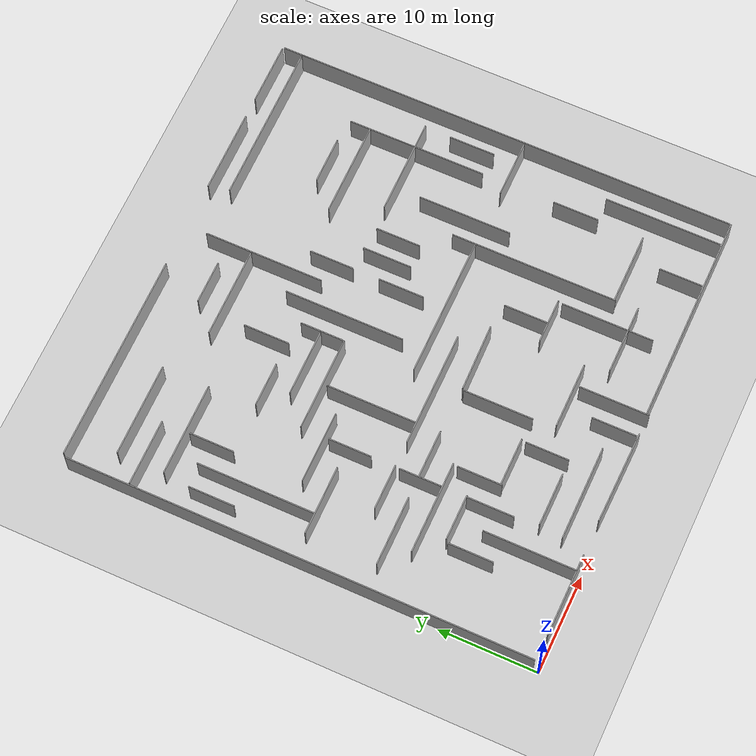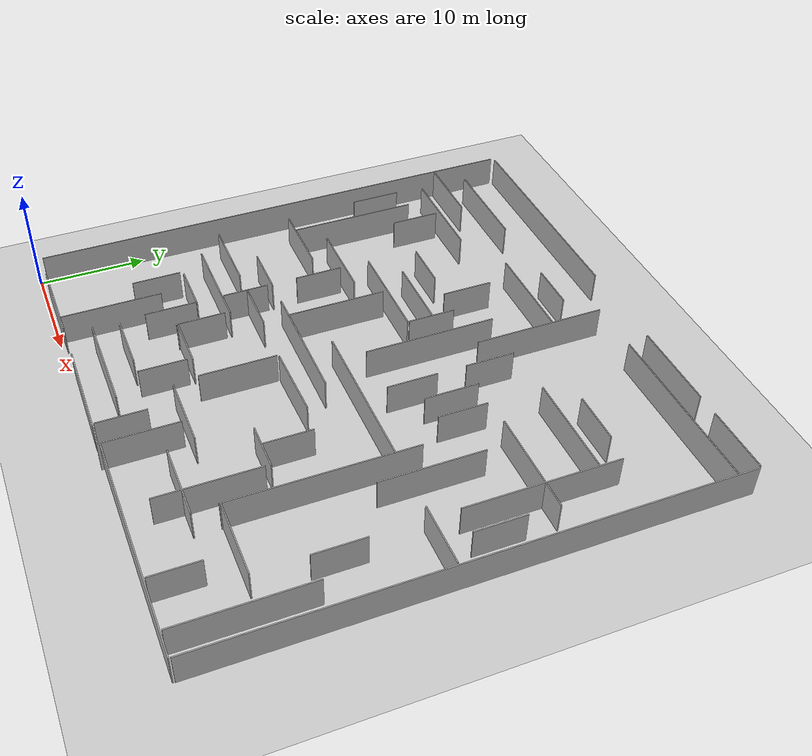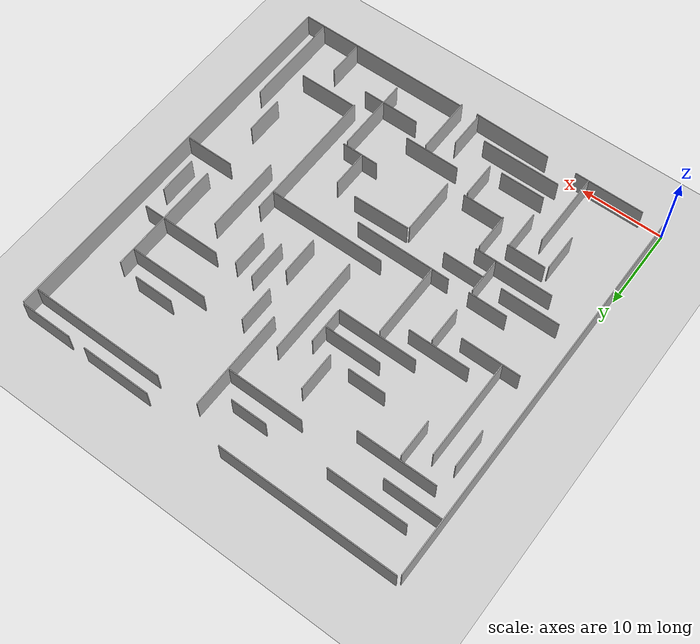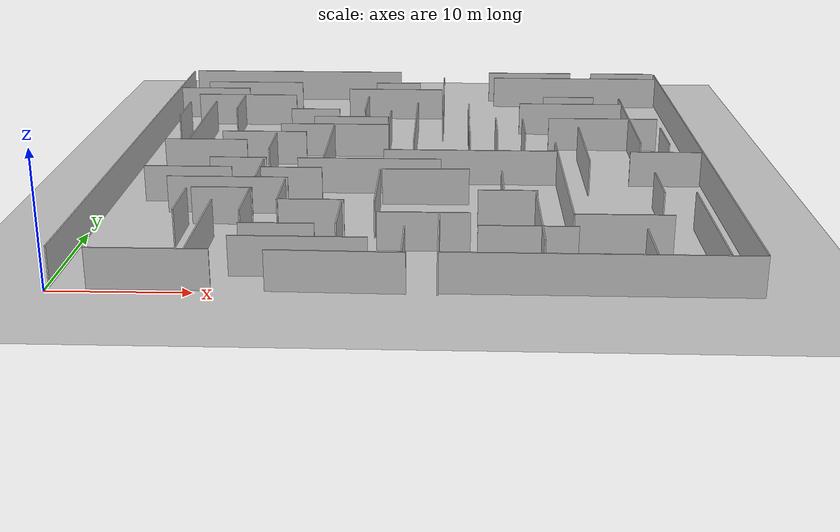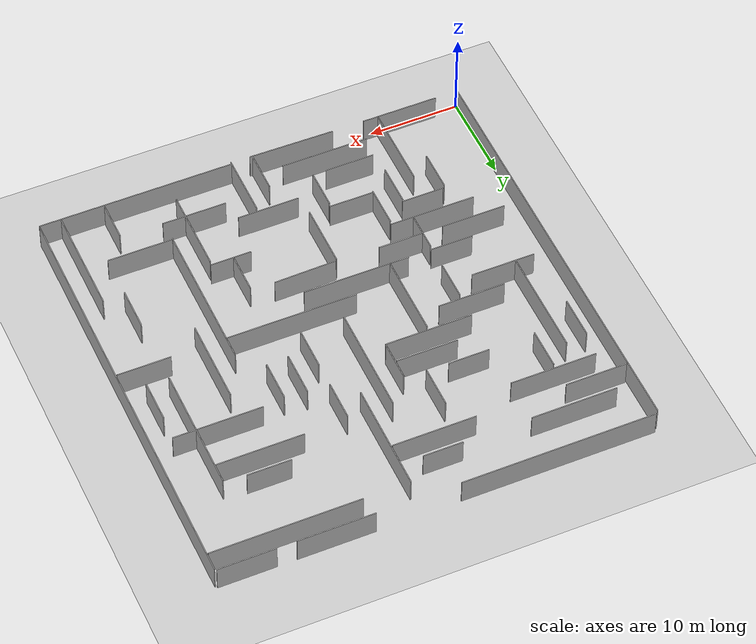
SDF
<?xml version="1.0" ?>
<sdf version="1.6">
  <world name="slam_world">
    <light name="sun" type="directional">
      <pose>0 0 10 0 0 0</pose>
      <diffuse>0.8 0.8 0.8 1</diffuse>
      <direction>-0.5 0.1 -0.9</direction>
    </light>
    <model name="ground_plane">
      <static>true</static>
      <link name="link">
        <collision name="collision">
          <geometry>
            <plane>
              <normal>0 0 1</normal>
              <size>100 100</size>
            </plane>
          </geometry>
        </collision>
        <visual name="visual">
          <geometry>
            <plane>
              <normal>0 0 1</normal>
              <size>100 100</size>
            </plane>
          </geometry>
          <material>
            <ambient>0.8 0.8 0.8 1</ambient>
            <diffuse>0.8 0.8 0.8 1</diffuse>
            <specular>0.8 0.8 0.8 1</specular>
          </material>
        </visual>
      </link>
    </model>
    <model name="wall_0">
      <static>true</static>
      <pose>37.05 0.44999999999999996 1.5 0 0 0.0</pose>
      <link name="link">
        <collision name="collision">
          <geometry>
            <box>
              <size>21.6 0.1 3.0</size>
            </box>
          </geometry>
        </collision>
        <visual name="visual">
          <geometry>
            <box>
              <size>21.6 0.1 3.0</size>
            </box>
          </geometry>
          <material>
            <ambient>0.5 0.5 0.5 1</ambient>
            <diffuse>0.7 0.7 0.7 1</diffuse>
          </material>
        </visual>
      </link>
    </model>
    <model name="wall_1">
      <static>true</static>
      <pose>47.85 24.3 1.5 0 0 1.5707963267948966</pose>
      <link name="link">
        <collision name="collision">
          <geometry>
            <box>
              <size>47.4 0.1 3.0</size>
            </box>
          </geometry>
        </collision>
        <visual name="visual">
          <geometry>
            <box>
              <size>47.4 0.1 3.0</size>
            </box>
          </geometry>
          <material>
            <ambient>0.5 0.5 0.5 1</ambient>
            <diffuse>0.7 0.7 0.7 1</diffuse>
          </material>
        </visual>
      </link>
    </model>
    <model name="wall_2">
      <static>true</static>
      <pose>11.1 48.15 1.5 0 0 0.0</pose>
      <link name="link">
        <collision name="collision">
          <geometry>
            <box>
              <size>21.3 0.1 3.0</size>
            </box>
          </geometry>
        </collision>
        <visual name="visual">
          <geometry>
            <box>
              <size>21.3 0.1 3.0</size>
            </box>
          </geometry>
          <material>
            <ambient>0.5 0.5 0.5 1</ambient>
            <diffuse>0.7 0.7 0.7 1</diffuse>
          </material>
        </visual>
      </link>
    </model>
    <model name="wall_3">
      <static>true</static>
      <pose>0.15 24.225 1.5 0 0 1.5707963267948966</pose>
      <link name="link">
        <collision name="collision">
          <geometry>
            <box>
              <size>47.25 0.1 3.0</size>
            </box>
          </geometry>
        </collision>
        <visual name="visual">
          <geometry>
            <box>
              <size>47.25 0.1 3.0</size>
            </box>
          </geometry>
          <material>
            <ambient>0.5 0.5 0.5 1</ambient>
            <diffuse>0.7 0.7 0.7 1</diffuse>
          </material>
        </visual>
      </link>
    </model>
    <model name="wall_4">
      <static>true</static>
      <pose>39.525 46.05 1.5 0 0 0.0</pose>
      <link name="link">
        <collision name="collision">
          <geometry>
            <box>
              <size>16.349999999999998 0.1 3.0</size>
            </box>
          </geometry>
        </collision>
        <visual name="visual">
          <geometry>
            <box>
              <size>16.349999999999998 0.1 3.0</size>
            </box>
          </geometry>
          <material>
            <ambient>0.5 0.5 0.5 1</ambient>
            <diffuse>0.7 0.7 0.7 1</diffuse>
          </material>
        </visual>
      </link>
    </model>
    <model name="wall_5">
      <static>true</static>
      <pose>28.65 22.05 1.5 0 0 0.0</pose>
      <link name="link">
        <collision name="collision">
          <geometry>
            <box>
              <size>14.400000000000002 0.1 3.0</size>
            </box>
          </geometry>
        </collision>
        <visual name="visual">
          <geometry>
            <box>
              <size>14.400000000000002 0.1 3.0</size>
            </box>
          </geometry>
          <material>
            <ambient>0.5 0.5 0.5 1</ambient>
            <diffuse>0.7 0.7 0.7 1</diffuse>
          </material>
        </visual>
      </link>
    </model>
    <model name="wall_6">
      <static>true</static>
      <pose>9.675 19.65 1.5 0 0 0.0</pose>
      <link name="link">
        <collision name="collision">
          <geometry>
            <box>
              <size>4.65 0.1 3.0</size>
            </box>
          </geometry>
        </collision>
        <visual name="visual">
          <geometry>
            <box>
              <size>4.65 0.1 3.0</size>
            </box>
          </geometry>
          <material>
            <ambient>0.5 0.5 0.5 1</ambient>
            <diffuse>0.7 0.7 0.7 1</diffuse>
          </material>
        </visual>
      </link>
    </model>
    <model name="wall_7">
      <static>true</static>
      <pose>26.25 39.974999999999994 1.5 0 0 1.5707963267948966</pose>
      <link name="link">
        <collision name="collision">
          <geometry>
            <box>
              <size>12.149999999999999 0.1 3.0</size>
            </box>
          </geometry>
        </collision>
        <visual name="visual">
          <geometry>
            <box>
              <size>12.149999999999999 0.1 3.0</size>
            </box>
          </geometry>
          <material>
            <ambient>0.5 0.5 0.5 1</ambient>
            <diffuse>0.7 0.7 0.7 1</diffuse>
          </material>
        </visual>
      </link>
    </model>
    <model name="wall_8">
      <static>true</static>
      <pose>23.849999999999998 2.7 1.5 0 0 1.5707963267948966</pose>
      <link name="link">
        <collision name="collision">
          <geometry>
            <box>
              <size>4.5 0.1 3.0</size>
            </box>
          </geometry>
        </collision>
        <visual name="visual">
          <geometry>
            <box>
              <size>4.5 0.1 3.0</size>
            </box>
          </geometry>
          <material>
            <ambient>0.5 0.5 0.5 1</ambient>
            <diffuse>0.7 0.7 0.7 1</diffuse>
          </material>
        </visual>
      </link>
    </model>
    <model name="wall_9">
      <static>true</static>
      <pose>11.85 10.049999999999999 1.5 0 0 1.5707963267948966</pose>
      <link name="link">
        <collision name="collision">
          <geometry>
            <box>
              <size>4.8 0.1 3.0</size>
            </box>
          </geometry>
        </collision>
        <visual name="visual">
          <geometry>
            <box>
              <size>4.8 0.1 3.0</size>
            </box>
          </geometry>
          <material>
            <ambient>0.5 0.5 0.5 1</ambient>
            <diffuse>0.7 0.7 0.7 1</diffuse>
          </material>
        </visual>
      </link>
    </model>
    <model name="wall_10">
      <static>true</static>
      <pose>7.275 38.85 1.5 0 0 0.0</pose>
      <link name="link">
        <collision name="collision">
          <geometry>
            <box>
              <size>9.45 0.1 3.0</size>
            </box>
          </geometry>
        </collision>
        <visual name="visual">
          <geometry>
            <box>
              <size>9.45 0.1 3.0</size>
            </box>
          </geometry>
          <material>
            <ambient>0.5 0.5 0.5 1</ambient>
            <diffuse>0.7 0.7 0.7 1</diffuse>
          </material>
        </visual>
      </link>
    </model>
    <model name="wall_11">
      <static>true</static>
      <pose>31.049999999999997 29.174999999999997 1.5 0 0 1.5707963267948966</pose>
      <link name="link">
        <collision name="collision">
          <geometry>
            <box>
              <size>4.949999999999999 0.1 3.0</size>
            </box>
          </geometry>
        </collision>
        <visual name="visual">
          <geometry>
            <box>
              <size>4.949999999999999 0.1 3.0</size>
            </box>
          </geometry>
          <material>
            <ambient>0.5 0.5 0.5 1</ambient>
            <diffuse>0.7 0.7 0.7 1</diffuse>
          </material>
        </visual>
      </link>
    </model>
    <model name="wall_12">
      <static>true</static>
      <pose>45.449999999999996 26.625 1.5 0 0 1.5707963267948966</pose>
      <link name="link">
        <collision name="collision">
          <geometry>
            <box>
              <size>4.649999999999999 0.1 3.0</size>
            </box>
          </geometry>
        </collision>
        <visual name="visual">
          <geometry>
            <box>
              <size>4.649999999999999 0.1 3.0</size>
            </box>
          </geometry>
          <material>
            <ambient>0.5 0.5 0.5 1</ambient>
            <diffuse>0.7 0.7 0.7 1</diffuse>
          </material>
        </visual>
      </link>
    </model>
    <model name="wall_13">
      <static>true</static>
      <pose>39.45 7.6499999999999995 1.5 0 0 0.0</pose>
      <link name="link">
        <collision name="collision">
          <geometry>
            <box>
              <size>7.199999999999996 0.1 3.0</size>
            </box>
          </geometry>
        </collision>
        <visual name="visual">
          <geometry>
            <box>
              <size>7.199999999999996 0.1 3.0</size>
            </box>
          </geometry>
          <material>
            <ambient>0.5 0.5 0.5 1</ambient>
            <diffuse>0.7 0.7 0.7 1</diffuse>
          </material>
        </visual>
      </link>
    </model>
    <model name="wall_14">
      <static>true</static>
      <pose>3.675 41.25 1.5 0 0 0.0</pose>
      <link name="link">
        <collision name="collision">
          <geometry>
            <box>
              <size>6.75 0.1 3.0</size>
            </box>
          </geometry>
        </collision>
        <visual name="visual">
          <geometry>
            <box>
              <size>6.75 0.1 3.0</size>
            </box>
          </geometry>
          <material>
            <ambient>0.5 0.5 0.5 1</ambient>
            <diffuse>0.7 0.7 0.7 1</diffuse>
          </material>
        </visual>
      </link>
    </model>
    <model name="wall_15">
      <static>true</static>
      <pose>43.05 14.625 1.5 0 0 1.5707963267948966</pose>
      <link name="link">
        <collision name="collision">
          <geometry>
            <box>
              <size>4.65 0.1 3.0</size>
            </box>
          </geometry>
        </collision>
        <visual name="visual">
          <geometry>
            <box>
              <size>4.65 0.1 3.0</size>
            </box>
          </geometry>
          <material>
            <ambient>0.5 0.5 0.5 1</ambient>
            <diffuse>0.7 0.7 0.7 1</diffuse>
          </material>
        </visual>
      </link>
    </model>
    <model name="wall_16">
      <static>true</static>
      <pose>40.725 31.65 1.5 0 0 0.0</pose>
      <link name="link">
        <collision name="collision">
          <geometry>
            <box>
              <size>9.75 0.1 3.0</size>
            </box>
          </geometry>
        </collision>
        <visual name="visual">
          <geometry>
            <box>
              <size>9.75 0.1 3.0</size>
            </box>
          </geometry>
          <material>
            <ambient>0.5 0.5 0.5 1</ambient>
            <diffuse>0.7 0.7 0.7 1</diffuse>
          </material>
        </visual>
      </link>
    </model>
    <model name="wall_17">
      <static>true</static>
      <pose>4.6499999999999995 30.449999999999996 1.5 0 0 1.5707963267948966</pose>
      <link name="link">
        <collision name="collision">
          <geometry>
            <box>
              <size>11.999999999999996 0.1 3.0</size>
            </box>
          </geometry>
        </collision>
        <visual name="visual">
          <geometry>
            <box>
              <size>11.999999999999996 0.1 3.0</size>
            </box>
          </geometry>
          <material>
            <ambient>0.5 0.5 0.5 1</ambient>
            <diffuse>0.7 0.7 0.7 1</diffuse>
          </material>
        </visual>
      </link>
    </model>
    <model name="wall_18">
      <static>true</static>
      <pose>6.074999999999999 17.25 1.5 0 0 0.0</pose>
      <link name="link">
        <collision name="collision">
          <geometry>
            <box>
              <size>7.05 0.1 3.0</size>
            </box>
          </geometry>
        </collision>
        <visual name="visual">
          <geometry>
            <box>
              <size>7.05 0.1 3.0</size>
            </box>
          </geometry>
          <material>
            <ambient>0.5 0.5 0.5 1</ambient>
            <diffuse>0.7 0.7 0.7 1</diffuse>
          </material>
        </visual>
      </link>
    </model>
    <model name="wall_19">
      <static>true</static>
      <pose>35.85 15.975 1.5 0 0 1.5707963267948966</pose>
      <link name="link">
        <collision name="collision">
          <geometry>
            <box>
              <size>16.95 0.1 3.0</size>
            </box>
          </geometry>
        </collision>
        <visual name="visual">
          <geometry>
            <box>
              <size>16.95 0.1 3.0</size>
            </box>
          </geometry>
          <material>
            <ambient>0.5 0.5 0.5 1</ambient>
            <diffuse>0.7 0.7 0.7 1</diffuse>
          </material>
        </visual>
      </link>
    </model>
    <model name="wall_20">
      <static>true</static>
      <pose>21.674999999999997 43.65 1.5 0 0 0.0</pose>
      <link name="link">
        <collision name="collision">
          <geometry>
            <box>
              <size>4.349999999999998 0.1 3.0</size>
            </box>
          </geometry>
        </collision>
        <visual name="visual">
          <geometry>
            <box>
              <size>4.349999999999998 0.1 3.0</size>
            </box>
          </geometry>
          <material>
            <ambient>0.5 0.5 0.5 1</ambient>
            <diffuse>0.7 0.7 0.7 1</diffuse>
          </material>
        </visual>
      </link>
    </model>
    <model name="wall_21">
      <static>true</static>
      <pose>21.45 13.425 1.5 0 0 1.5707963267948966</pose>
      <link name="link">
        <collision name="collision">
          <geometry>
            <box>
              <size>7.049999999999999 0.1 3.0</size>
            </box>
          </geometry>
        </collision>
        <visual name="visual">
          <geometry>
            <box>
              <size>7.049999999999999 0.1 3.0</size>
            </box>
          </geometry>
          <material>
            <ambient>0.5 0.5 0.5 1</ambient>
            <diffuse>0.7 0.7 0.7 1</diffuse>
          </material>
        </visual>
      </link>
    </model>
    <model name="wall_22">
      <static>true</static>
      <pose>16.65 29.25 1.5 0 0 0.0</pose>
      <link name="link">
        <collision name="collision">
          <geometry>
            <box>
              <size>9.6 0.1 3.0</size>
            </box>
          </geometry>
        </collision>
        <visual name="visual">
          <geometry>
            <box>
              <size>9.6 0.1 3.0</size>
            </box>
          </geometry>
          <material>
            <ambient>0.5 0.5 0.5 1</ambient>
            <diffuse>0.7 0.7 0.7 1</diffuse>
          </material>
        </visual>
      </link>
    </model>
    <model name="wall_23">
      <static>true</static>
      <pose>38.25 36.449999999999996 1.5 0 0 0.0</pose>
      <link name="link">
        <collision name="collision">
          <geometry>
            <box>
              <size>9.600000000000001 0.1 3.0</size>
            </box>
          </geometry>
        </collision>
        <visual name="visual">
          <geometry>
            <box>
              <size>9.600000000000001 0.1 3.0</size>
            </box>
          </geometry>
          <material>
            <ambient>0.5 0.5 0.5 1</ambient>
            <diffuse>0.7 0.7 0.7 1</diffuse>
          </material>
        </visual>
      </link>
    </model>
    <model name="wall_24">
      <static>true</static>
      <pose>19.05 36.224999999999994 1.5 0 0 1.5707963267948966</pose>
      <link name="link">
        <collision name="collision">
          <geometry>
            <box>
              <size>4.649999999999999 0.1 3.0</size>
            </box>
          </geometry>
        </collision>
        <visual name="visual">
          <geometry>
            <box>
              <size>4.649999999999999 0.1 3.0</size>
            </box>
          </geometry>
          <material>
            <ambient>0.5 0.5 0.5 1</ambient>
            <diffuse>0.7 0.7 0.7 1</diffuse>
          </material>
        </visual>
      </link>
    </model>
    <model name="wall_25">
      <static>true</static>
      <pose>28.65 33.9 1.5 0 0 1.5707963267948966</pose>
      <link name="link">
        <collision name="collision">
          <geometry>
            <box>
              <size>4.5 0.1 3.0</size>
            </box>
          </geometry>
        </collision>
        <visual name="visual">
          <geometry>
            <box>
              <size>4.5 0.1 3.0</size>
            </box>
          </geometry>
          <material>
            <ambient>0.5 0.5 0.5 1</ambient>
            <diffuse>0.7 0.7 0.7 1</diffuse>
          </material>
        </visual>
      </link>
    </model>
    <model name="wall_26">
      <static>true</static>
      <pose>38.25 24.225 1.5 0 0 1.5707963267948966</pose>
      <link name="link">
        <collision name="collision">
          <geometry>
            <box>
              <size>9.45 0.1 3.0</size>
            </box>
          </geometry>
        </collision>
        <visual name="visual">
          <geometry>
            <box>
              <size>9.45 0.1 3.0</size>
            </box>
          </geometry>
          <material>
            <ambient>0.5 0.5 0.5 1</ambient>
            <diffuse>0.7 0.7 0.7 1</diffuse>
          </material>
        </visual>
      </link>
    </model>
    <model name="wall_27">
      <static>true</static>
      <pose>7.05 9.9 1.5 0 0 1.5707963267948966</pose>
      <link name="link">
        <collision name="collision">
          <geometry>
            <box>
              <size>4.500000000000001 0.1 3.0</size>
            </box>
          </geometry>
        </collision>
        <visual name="visual">
          <geometry>
            <box>
              <size>4.500000000000001 0.1 3.0</size>
            </box>
          </geometry>
          <material>
            <ambient>0.5 0.5 0.5 1</ambient>
            <diffuse>0.7 0.7 0.7 1</diffuse>
          </material>
        </visual>
      </link>
    </model>
    <model name="wall_28">
      <static>true</static>
      <pose>9.674999999999999 14.85 1.5 0 0 0.0</pose>
      <link name="link">
        <collision name="collision">
          <geometry>
            <box>
              <size>9.45 0.1 3.0</size>
            </box>
          </geometry>
        </collision>
        <visual name="visual">
          <geometry>
            <box>
              <size>9.45 0.1 3.0</size>
            </box>
          </geometry>
          <material>
            <ambient>0.5 0.5 0.5 1</ambient>
            <diffuse>0.7 0.7 0.7 1</diffuse>
          </material>
        </visual>
      </link>
    </model>
    <model name="wall_29">
      <static>true</static>
      <pose>32.475 5.25 1.5 0 0 0.0</pose>
      <link name="link">
        <collision name="collision">
          <geometry>
            <box>
              <size>7.050000000000001 0.1 3.0</size>
            </box>
          </geometry>
        </collision>
        <visual name="visual">
          <geometry>
            <box>
              <size>7.050000000000001 0.1 3.0</size>
            </box>
          </geometry>
          <material>
            <ambient>0.5 0.5 0.5 1</ambient>
            <diffuse>0.7 0.7 0.7 1</diffuse>
          </material>
        </visual>
      </link>
    </model>
    <model name="wall_30">
      <static>true</static>
      <pose>9.45 5.1 1.5 0 0 1.5707963267948966</pose>
      <link name="link">
        <collision name="collision">
          <geometry>
            <box>
              <size>9.3 0.1 3.0</size>
            </box>
          </geometry>
        </collision>
        <visual name="visual">
          <geometry>
            <box>
              <size>9.3 0.1 3.0</size>
            </box>
          </geometry>
          <material>
            <ambient>0.5 0.5 0.5 1</ambient>
            <diffuse>0.7 0.7 0.7 1</diffuse>
          </material>
        </visual>
      </link>
    </model>
    <model name="wall_31">
      <static>true</static>
      <pose>33.449999999999996 29.099999999999998 1.5 0 0 1.5707963267948966</pose>
      <link name="link">
        <collision name="collision">
          <geometry>
            <box>
              <size>4.5 0.1 3.0</size>
            </box>
          </geometry>
        </collision>
        <visual name="visual">
          <geometry>
            <box>
              <size>4.5 0.1 3.0</size>
            </box>
          </geometry>
          <material>
            <ambient>0.5 0.5 0.5 1</ambient>
            <diffuse>0.7 0.7 0.7 1</diffuse>
          </material>
        </visual>
      </link>
    </model>
    <model name="wall_32">
      <static>true</static>
      <pose>16.65 24.224999999999998 1.5 0 0 1.5707963267948966</pose>
      <link name="link">
        <collision name="collision">
          <geometry>
            <box>
              <size>9.149999999999999 0.1 3.0</size>
            </box>
          </geometry>
        </collision>
        <visual name="visual">
          <geometry>
            <box>
              <size>9.149999999999999 0.1 3.0</size>
            </box>
          </geometry>
          <material>
            <ambient>0.5 0.5 0.5 1</ambient>
            <diffuse>0.7 0.7 0.7 1</diffuse>
          </material>
        </visual>
      </link>
    </model>
    <model name="wall_33">
      <static>true</static>
      <pose>9.675 12.45 1.5 0 0 0.0</pose>
      <link name="link">
        <collision name="collision">
          <geometry>
            <box>
              <size>4.65 0.1 3.0</size>
            </box>
          </geometry>
        </collision>
        <visual name="visual">
          <geometry>
            <box>
              <size>4.65 0.1 3.0</size>
            </box>
          </geometry>
          <material>
            <ambient>0.5 0.5 0.5 1</ambient>
            <diffuse>0.7 0.7 0.7 1</diffuse>
          </material>
        </visual>
      </link>
    </model>
    <model name="wall_34">
      <static>true</static>
      <pose>2.25 33.825 1.5 0 0 1.5707963267948966</pose>
      <link name="link">
        <collision name="collision">
          <geometry>
            <box>
              <size>4.649999999999999 0.1 3.0</size>
            </box>
          </geometry>
        </collision>
        <visual name="visual">
          <geometry>
            <box>
              <size>4.649999999999999 0.1 3.0</size>
            </box>
          </geometry>
          <material>
            <ambient>0.5 0.5 0.5 1</ambient>
            <diffuse>0.7 0.7 0.7 1</diffuse>
          </material>
        </visual>
      </link>
    </model>
    <model name="wall_35">
      <static>true</static>
      <pose>6.074999999999999 24.45 1.5 0 0 0.0</pose>
      <link name="link">
        <collision name="collision">
          <geometry>
            <box>
              <size>7.05 0.1 3.0</size>
            </box>
          </geometry>
        </collision>
        <visual name="visual">
          <geometry>
            <box>
              <size>7.05 0.1 3.0</size>
            </box>
          </geometry>
          <material>
            <ambient>0.5 0.5 0.5 1</ambient>
            <diffuse>0.7 0.7 0.7 1</diffuse>
          </material>
        </visual>
      </link>
    </model>
    <model name="wall_36">
      <static>true</static>
      <pose>16.65 2.85 1.5 0 0 0.0</pose>
      <link name="link">
        <collision name="collision">
          <geometry>
            <box>
              <size>9.6 0.1 3.0</size>
            </box>
          </geometry>
        </collision>
        <visual name="visual">
          <geometry>
            <box>
              <size>9.6 0.1 3.0</size>
            </box>
          </geometry>
          <material>
            <ambient>0.5 0.5 0.5 1</ambient>
            <diffuse>0.7 0.7 0.7 1</diffuse>
          </material>
        </visual>
      </link>
    </model>
    <model name="wall_37">
      <static>true</static>
      <pose>10.725 26.849999999999998 1.5 0 0 0.0</pose>
      <link name="link">
        <collision name="collision">
          <geometry>
            <box>
              <size>7.349999999999999 0.1 3.0</size>
            </box>
          </geometry>
        </collision>
        <visual name="visual">
          <geometry>
            <box>
              <size>7.349999999999999 0.1 3.0</size>
            </box>
          </geometry>
          <material>
            <ambient>0.5 0.5 0.5 1</ambient>
            <diffuse>0.7 0.7 0.7 1</diffuse>
          </material>
        </visual>
      </link>
    </model>
    <model name="wall_38">
      <static>true</static>
      <pose>23.849999999999998 30.375 1.5 0 0 1.5707963267948966</pose>
      <link name="link">
        <collision name="collision">
          <geometry>
            <box>
              <size>12.149999999999995 0.1 3.0</size>
            </box>
          </geometry>
        </collision>
        <visual name="visual">
          <geometry>
            <box>
              <size>12.149999999999995 0.1 3.0</size>
            </box>
          </geometry>
          <material>
            <ambient>0.5 0.5 0.5 1</ambient>
            <diffuse>0.7 0.7 0.7 1</diffuse>
          </material>
        </visual>
      </link>
    </model>
    <model name="wall_39">
      <static>true</static>
      <pose>40.65 2.775 1.5 0 0 1.5707963267948966</pose>
      <link name="link">
        <collision name="collision">
          <geometry>
            <box>
              <size>4.3500000000000005 0.1 3.0</size>
            </box>
          </geometry>
        </collision>
        <visual name="visual">
          <geometry>
            <box>
              <size>4.3500000000000005 0.1 3.0</size>
            </box>
          </geometry>
          <material>
            <ambient>0.5 0.5 0.5 1</ambient>
            <diffuse>0.7 0.7 0.7 1</diffuse>
          </material>
        </visual>
      </link>
    </model>
    <model name="wall_40">
      <static>true</static>
      <pose>7.275 43.65 1.5 0 0 0.0</pose>
      <link name="link">
        <collision name="collision">
          <geometry>
            <box>
              <size>9.45 0.1 3.0</size>
            </box>
          </geometry>
        </collision>
        <visual name="visual">
          <geometry>
            <box>
              <size>9.45 0.1 3.0</size>
            </box>
          </geometry>
          <material>
            <ambient>0.5 0.5 0.5 1</ambient>
            <diffuse>0.7 0.7 0.7 1</diffuse>
          </material>
        </visual>
      </link>
    </model>
    <model name="wall_41">
      <static>true</static>
      <pose>43.05 31.5 1.5 0 0 1.5707963267948966</pose>
      <link name="link">
        <collision name="collision">
          <geometry>
            <box>
              <size>14.099999999999998 0.1 3.0</size>
            </box>
          </geometry>
        </collision>
        <visual name="visual">
          <geometry>
            <box>
              <size>14.099999999999998 0.1 3.0</size>
            </box>
          </geometry>
          <material>
            <ambient>0.5 0.5 0.5 1</ambient>
            <diffuse>0.7 0.7 0.7 1</diffuse>
          </material>
        </visual>
      </link>
    </model>
    <model name="wall_42">
      <static>true</static>
      <pose>20.4 19.65 1.5 0 0 0.0</pose>
      <link name="link">
        <collision name="collision">
          <geometry>
            <box>
              <size>11.700000000000001 0.1 3.0</size>
            </box>
          </geometry>
        </collision>
        <visual name="visual">
          <geometry>
            <box>
              <size>11.700000000000001 0.1 3.0</size>
            </box>
          </geometry>
          <material>
            <ambient>0.5 0.5 0.5 1</ambient>
            <diffuse>0.7 0.7 0.7 1</diffuse>
          </material>
        </visual>
      </link>
    </model>
    <model name="wall_43">
      <static>true</static>
      <pose>31.049999999999997 14.7 1.5 0 0 1.5707963267948966</pose>
      <link name="link">
        <collision name="collision">
          <geometry>
            <box>
              <size>4.5 0.1 3.0</size>
            </box>
          </geometry>
        </collision>
        <visual name="visual">
          <geometry>
            <box>
              <size>4.5 0.1 3.0</size>
            </box>
          </geometry>
          <material>
            <ambient>0.5 0.5 0.5 1</ambient>
            <diffuse>0.7 0.7 0.7 1</diffuse>
          </material>
        </visual>
      </link>
    </model>
    <model name="wall_44">
      <static>true</static>
      <pose>16.725 10.049999999999999 1.5 0 0 0.0</pose>
      <link name="link">
        <collision name="collision">
          <geometry>
            <box>
              <size>4.949999999999999 0.1 3.0</size>
            </box>
          </geometry>
        </collision>
        <visual name="visual">
          <geometry>
            <box>
              <size>4.949999999999999 0.1 3.0</size>
            </box>
          </geometry>
          <material>
            <ambient>0.5 0.5 0.5 1</ambient>
            <diffuse>0.7 0.7 0.7 1</diffuse>
          </material>
        </visual>
      </link>
    </model>
    <model name="wall_45">
      <static>true</static>
      <pose>21.525 41.25 1.5 0 0 0.0</pose>
      <link name="link">
        <collision name="collision">
          <geometry>
            <box>
              <size>9.149999999999999 0.1 3.0</size>
            </box>
          </geometry>
        </collision>
        <visual name="visual">
          <geometry>
            <box>
              <size>9.149999999999999 0.1 3.0</size>
            </box>
          </geometry>
          <material>
            <ambient>0.5 0.5 0.5 1</ambient>
            <diffuse>0.7 0.7 0.7 1</diffuse>
          </material>
        </visual>
      </link>
    </model>
    <model name="wall_46">
      <static>true</static>
      <pose>45.449999999999996 6.5249999999999995 1.5 0 0 1.5707963267948966</pose>
      <link name="link">
        <collision name="collision">
          <geometry>
            <box>
              <size>11.85 0.1 3.0</size>
            </box>
          </geometry>
        </collision>
        <visual name="visual">
          <geometry>
            <box>
              <size>11.85 0.1 3.0</size>
            </box>
          </geometry>
          <material>
            <ambient>0.5 0.5 0.5 1</ambient>
            <diffuse>0.7 0.7 0.7 1</diffuse>
          </material>
        </visual>
      </link>
    </model>
    <model name="wall_47">
      <static>true</static>
      <pose>14.399999999999999 34.05 1.5 0 0 0.0</pose>
      <link name="link">
        <collision name="collision">
          <geometry>
            <box>
              <size>4.499999999999998 0.1 3.0</size>
            </box>
          </geometry>
        </collision>
        <visual name="visual">
          <geometry>
            <box>
              <size>4.499999999999998 0.1 3.0</size>
            </box>
          </geometry>
          <material>
            <ambient>0.5 0.5 0.5 1</ambient>
            <diffuse>0.7 0.7 0.7 1</diffuse>
          </material>
        </visual>
      </link>
    </model>
    <model name="wall_48">
      <static>true</static>
      <pose>11.85 24.225 1.5 0 0 1.5707963267948966</pose>
      <link name="link">
        <collision name="collision">
          <geometry>
            <box>
              <size>4.349999999999998 0.1 3.0</size>
            </box>
          </geometry>
        </collision>
        <visual name="visual">
          <geometry>
            <box>
              <size>4.349999999999998 0.1 3.0</size>
            </box>
          </geometry>
          <material>
            <ambient>0.5 0.5 0.5 1</ambient>
            <diffuse>0.7 0.7 0.7 1</diffuse>
          </material>
        </visual>
      </link>
    </model>
    <model name="wall_49">
      <static>true</static>
      <pose>28.65 26.625 1.5 0 0 1.5707963267948966</pose>
      <link name="link">
        <collision name="collision">
          <geometry>
            <box>
              <size>4.649999999999999 0.1 3.0</size>
            </box>
          </geometry>
        </collision>
        <visual name="visual">
          <geometry>
            <box>
              <size>4.649999999999999 0.1 3.0</size>
            </box>
          </geometry>
          <material>
            <ambient>0.5 0.5 0.5 1</ambient>
            <diffuse>0.7 0.7 0.7 1</diffuse>
          </material>
        </visual>
      </link>
    </model>
    <model name="wall_50">
      <static>true</static>
      <pose>35.099999999999994 48.15 1.5 0 0 0.0</pose>
      <link name="link">
        <collision name="collision">
          <geometry>
            <box>
              <size>8.399999999999999 0.1 3.0</size>
            </box>
          </geometry>
        </collision>
        <visual name="visual">
          <geometry>
            <box>
              <size>8.399999999999999 0.1 3.0</size>
            </box>
          </geometry>
          <material>
            <ambient>0.5 0.5 0.5 1</ambient>
            <diffuse>0.7 0.7 0.7 1</diffuse>
          </material>
        </visual>
      </link>
    </model>
    <model name="wall_51">
      <static>true</static>
      <pose>14.325 17.25 1.5 0 0 0.0</pose>
      <link name="link">
        <collision name="collision">
          <geometry>
            <box>
              <size>4.950000000000001 0.1 3.0</size>
            </box>
          </geometry>
        </collision>
        <visual name="visual">
          <geometry>
            <box>
              <size>4.950000000000001 0.1 3.0</size>
            </box>
          </geometry>
          <material>
            <ambient>0.5 0.5 0.5 1</ambient>
            <diffuse>0.7 0.7 0.7 1</diffuse>
          </material>
        </visual>
      </link>
    </model>
    <model name="wall_52">
      <static>true</static>
      <pose>31.35 12.45 1.5 0 0 0.0</pose>
      <link name="link">
        <collision name="collision">
          <geometry>
            <box>
              <size>4.5000000000000036 0.1 3.0</size>
            </box>
          </geometry>
        </collision>
        <visual name="visual">
          <geometry>
            <box>
              <size>4.5000000000000036 0.1 3.0</size>
            </box>
          </geometry>
          <material>
            <ambient>0.5 0.5 0.5 1</ambient>
            <diffuse>0.7 0.7 0.7 1</diffuse>
          </material>
        </visual>
      </link>
    </model>
    <model name="wall_53">
      <static>true</static>
      <pose>7.05 36.15 1.5 0 0 1.5707963267948966</pose>
      <link name="link">
        <collision name="collision">
          <geometry>
            <box>
              <size>4.5 0.1 3.0</size>
            </box>
          </geometry>
        </collision>
        <visual name="visual">
          <geometry>
            <box>
              <size>4.5 0.1 3.0</size>
            </box>
          </geometry>
          <material>
            <ambient>0.5 0.5 0.5 1</ambient>
            <diffuse>0.7 0.7 0.7 1</diffuse>
          </material>
        </visual>
      </link>
    </model>
    <model name="wall_54">
      <static>true</static>
      <pose>14.25 12.149999999999999 1.5 0 0 1.5707963267948966</pose>
      <link name="link">
        <collision name="collision">
          <geometry>
            <box>
              <size>4.499999999999998 0.1 3.0</size>
            </box>
          </geometry>
        </collision>
        <visual name="visual">
          <geometry>
            <box>
              <size>4.499999999999998 0.1 3.0</size>
            </box>
          </geometry>
          <material>
            <ambient>0.5 0.5 0.5 1</ambient>
            <diffuse>0.7 0.7 0.7 1</diffuse>
          </material>
        </visual>
      </link>
    </model>
    <model name="wall_55">
      <static>true</static>
      <pose>33.449999999999996 7.35 1.5 0 0 1.5707963267948966</pose>
      <link name="link">
        <collision name="collision">
          <geometry>
            <box>
              <size>9.3 0.1 3.0</size>
            </box>
          </geometry>
        </collision>
        <visual name="visual">
          <geometry>
            <box>
              <size>9.3 0.1 3.0</size>
            </box>
          </geometry>
          <material>
            <ambient>0.5 0.5 0.5 1</ambient>
            <diffuse>0.7 0.7 0.7 1</diffuse>
          </material>
        </visual>
      </link>
    </model>
    <model name="wall_56">
      <static>true</static>
      <pose>25.125 7.6499999999999995 1.5 0 0 0.0</pose>
      <link name="link">
        <collision name="collision">
          <geometry>
            <box>
              <size>6.75 0.1 3.0</size>
            </box>
          </geometry>
        </collision>
        <visual name="visual">
          <geometry>
            <box>
              <size>6.75 0.1 3.0</size>
            </box>
          </geometry>
          <material>
            <ambient>0.5 0.5 0.5 1</ambient>
            <diffuse>0.7 0.7 0.7 1</diffuse>
          </material>
        </visual>
      </link>
    </model>
    <model name="wall_57">
      <static>true</static>
      <pose>19.05 7.425 1.5 0 0 1.5707963267948966</pose>
      <link name="link">
        <collision name="collision">
          <geometry>
            <box>
              <size>4.35 0.1 3.0</size>
            </box>
          </geometry>
        </collision>
        <visual name="visual">
          <geometry>
            <box>
              <size>4.35 0.1 3.0</size>
            </box>
          </geometry>
          <material>
            <ambient>0.5 0.5 0.5 1</ambient>
            <diffuse>0.7 0.7 0.7 1</diffuse>
          </material>
        </visual>
      </link>
    </model>
    <model name="wall_58">
      <static>true</static>
      <pose>19.424999999999997 0.375 1.5 0 0 -0.015871682991790047</pose>
      <link name="link">
        <collision name="collision">
          <geometry>
            <box>
              <size>9.451190401214017 0.1 3.0</size>
            </box>
          </geometry>
        </collision>
        <visual name="visual">
          <geometry>
            <box>
              <size>9.451190401214017 0.1 3.0</size>
            </box>
          </geometry>
          <material>
            <ambient>0.5 0.5 0.5 1</ambient>
            <diffuse>0.7 0.7 0.7 1</diffuse>
          </material>
        </visual>
      </link>
    </model>
    <model name="wall_59">
      <static>true</static>
      <pose>26.25 3.675 1.5 0 0 1.5707963267948966</pose>
      <link name="link">
        <collision name="collision">
          <geometry>
            <box>
              <size>7.049999999999999 0.1 3.0</size>
            </box>
          </geometry>
        </collision>
        <visual name="visual">
          <geometry>
            <box>
              <size>7.049999999999999 0.1 3.0</size>
            </box>
          </geometry>
          <material>
            <ambient>0.5 0.5 0.5 1</ambient>
            <diffuse>0.7 0.7 0.7 1</diffuse>
          </material>
        </visual>
      </link>
    </model>
    <model name="wall_60">
      <static>true</static>
      <pose>38.25 38.85 1.5 0 0 0.0</pose>
      <link name="link">
        <collision name="collision">
          <geometry>
            <box>
              <size>4.799999999999997 0.1 3.0</size>
            </box>
          </geometry>
        </collision>
        <visual name="visual">
          <geometry>
            <box>
              <size>4.799999999999997 0.1 3.0</size>
            </box>
          </geometry>
          <material>
            <ambient>0.5 0.5 0.5 1</ambient>
            <diffuse>0.7 0.7 0.7 1</diffuse>
          </material>
        </visual>
      </link>
    </model>
    <model name="wall_61">
      <static>true</static>
      <pose>6.8999999999999995 0.44999999999999996 1.5 0 0 0.0</pose>
      <link name="link">
        <collision name="collision">
          <geometry>
            <box>
              <size>8.4 0.1 3.0</size>
            </box>
          </geometry>
        </collision>
        <visual name="visual">
          <geometry>
            <box>
              <size>8.4 0.1 3.0</size>
            </box>
          </geometry>
          <material>
            <ambient>0.5 0.5 0.5 1</ambient>
            <diffuse>0.7 0.7 0.7 1</diffuse>
          </material>
        </visual>
      </link>
    </model>
    <model name="wall_62">
      <static>true</static>
      <pose>44.775 22.05 1.5 0 0 0.0</pose>
      <link name="link">
        <collision name="collision">
          <geometry>
            <box>
              <size>5.849999999999994 0.1 3.0</size>
            </box>
          </geometry>
        </collision>
        <visual name="visual">
          <geometry>
            <box>
              <size>5.849999999999994 0.1 3.0</size>
            </box>
          </geometry>
          <material>
            <ambient>0.5 0.5 0.5 1</ambient>
            <diffuse>0.7 0.7 0.7 1</diffuse>
          </material>
        </visual>
      </link>
    </model>
    <model name="wall_63">
      <static>true</static>
      <pose>25.049999999999997 17.174999999999997 1.5 0 0 0.02173570684179297</pose>
      <link name="link">
        <collision name="collision">
          <geometry>
            <box>
              <size>6.901630242196407 0.1 3.0</size>
            </box>
          </geometry>
        </collision>
        <visual name="visual">
          <geometry>
            <box>
              <size>6.901630242196407 0.1 3.0</size>
            </box>
          </geometry>
          <material>
            <ambient>0.5 0.5 0.5 1</ambient>
            <diffuse>0.7 0.7 0.7 1</diffuse>
          </material>
        </visual>
      </link>
    </model>
    <model name="wall_64">
      <static>true</static>
      <pose>21.45 31.575 1.5 0 0 1.5707963267948966</pose>
      <link name="link">
        <collision name="collision">
          <geometry>
            <box>
              <size>4.350000000000001 0.1 3.0</size>
            </box>
          </geometry>
        </collision>
        <visual name="visual">
          <geometry>
            <box>
              <size>4.350000000000001 0.1 3.0</size>
            </box>
          </geometry>
          <material>
            <ambient>0.5 0.5 0.5 1</ambient>
            <diffuse>0.7 0.7 0.7 1</diffuse>
          </material>
        </visual>
      </link>
    </model>
    <model name="wall_65">
      <static>true</static>
      <pose>11.85 17.1 1.5 0 0 1.5707963267948966</pose>
      <link name="link">
        <collision name="collision">
          <geometry>
            <box>
              <size>4.199999999999999 0.1 3.0</size>
            </box>
          </geometry>
        </collision>
        <visual name="visual">
          <geometry>
            <box>
              <size>4.199999999999999 0.1 3.0</size>
            </box>
          </geometry>
          <material>
            <ambient>0.5 0.5 0.5 1</ambient>
            <diffuse>0.7 0.7 0.7 1</diffuse>
          </material>
        </visual>
      </link>
    </model>
    <model name="wall_66">
      <static>true</static>
      <pose>44.55 48.15 1.5 0 0 0.0</pose>
      <link name="link">
        <collision name="collision">
          <geometry>
            <box>
              <size>6.299999999999997 0.1 3.0</size>
            </box>
          </geometry>
        </collision>
        <visual name="visual">
          <geometry>
            <box>
              <size>6.299999999999997 0.1 3.0</size>
            </box>
          </geometry>
          <material>
            <ambient>0.5 0.5 0.5 1</ambient>
            <diffuse>0.7 0.7 0.7 1</diffuse>
          </material>
        </visual>
      </link>
    </model>
    <model name="wall_67">
      <static>true</static>
      <pose>17.925 31.65 1.5 0 0 0.0</pose>
      <link name="link">
        <collision name="collision">
          <geometry>
            <box>
              <size>6.750000000000002 0.1 3.0</size>
            </box>
          </geometry>
        </collision>
        <visual name="visual">
          <geometry>
            <box>
              <size>6.750000000000002 0.1 3.0</size>
            </box>
          </geometry>
          <material>
            <ambient>0.5 0.5 0.5 1</ambient>
            <diffuse>0.7 0.7 0.7 1</diffuse>
          </material>
        </visual>
      </link>
    </model>
    <model name="wall_68">
      <static>true</static>
      <pose>14.850000000000001 5.25 1.5 0 0 0.0</pose>
      <link name="link">
        <collision name="collision">
          <geometry>
            <box>
              <size>5.4 0.1 3.0</size>
            </box>
          </geometry>
        </collision>
        <visual name="visual">
          <geometry>
            <box>
              <size>5.4 0.1 3.0</size>
            </box>
          </geometry>
          <material>
            <ambient>0.5 0.5 0.5 1</ambient>
            <diffuse>0.7 0.7 0.7 1</diffuse>
          </material>
        </visual>
      </link>
    </model>
  </world>
</sdf>
